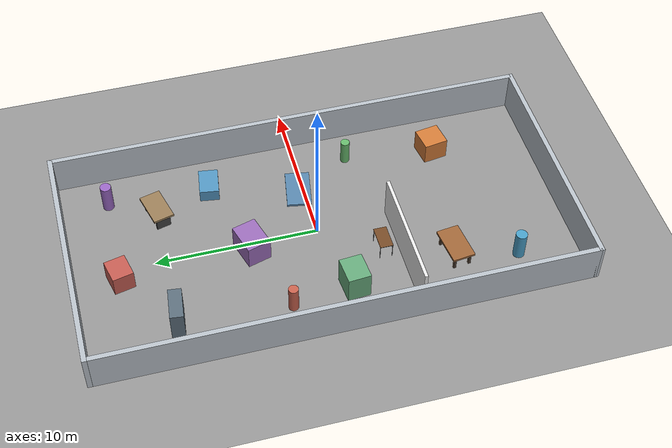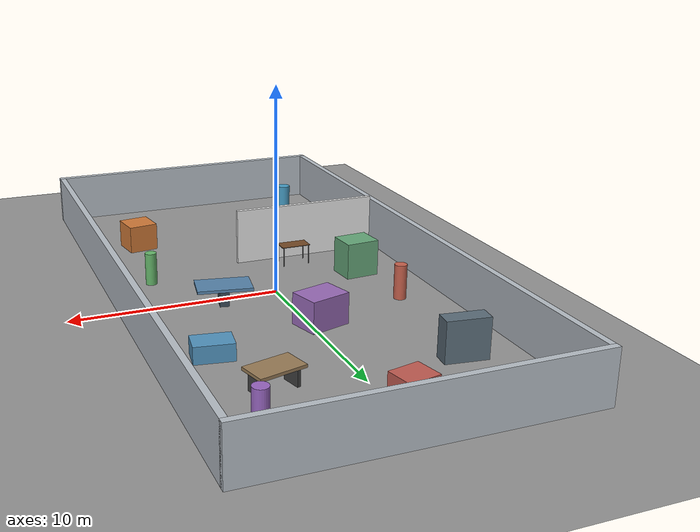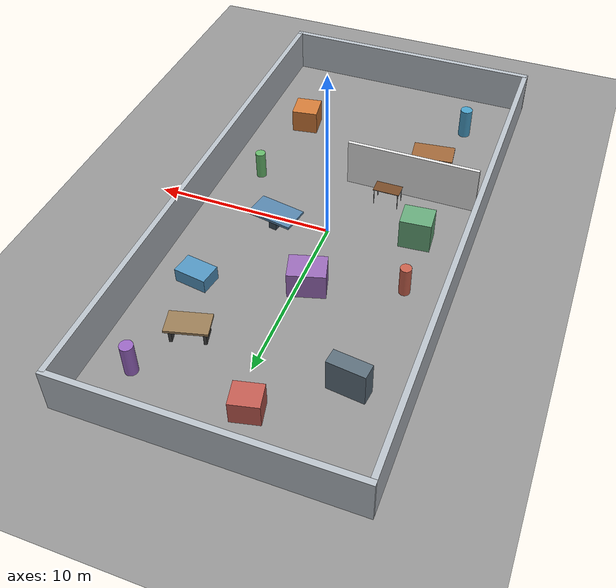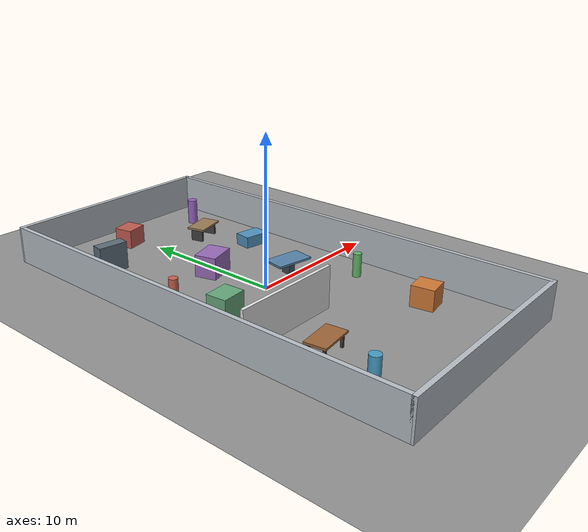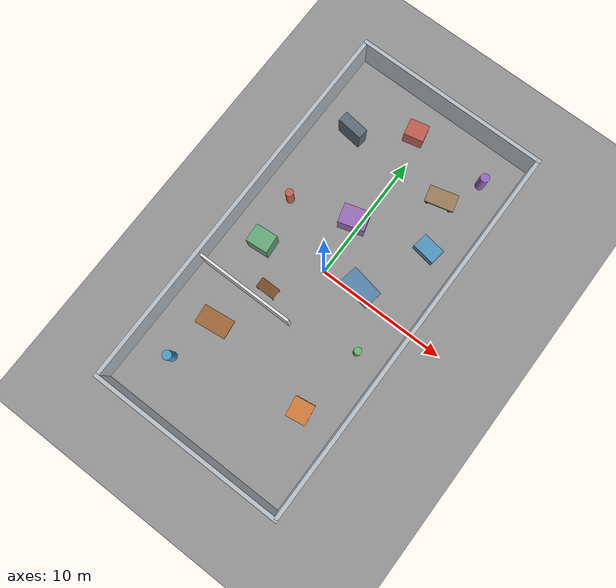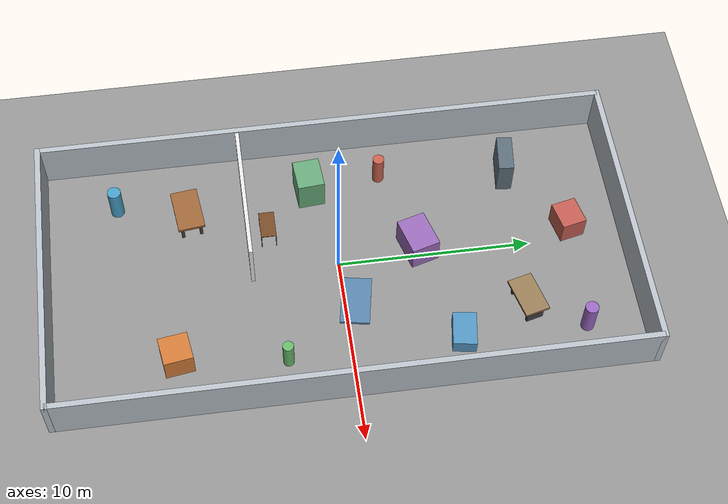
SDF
<?xml version='1.0' encoding='utf-8'?>
<sdf version="1.9">
  <world name="student_center">
      <plugin
      filename="gz-sim-physics-system"
      name="gz::sim::systems::Physics"/>

    <plugin
      filename="gz-sim-user-commands-system"
      name="gz::sim::systems::UserCommands"/>

    <plugin
      filename="gz-sim-scene-broadcaster-system"
      name="gz::sim::systems::SceneBroadcaster"/>

    <plugin
      filename="gz-sim-sensors-system"
      name="gz::sim::systems::Sensors">
      <render_engine>ogre2</render_engine>
    </plugin>
    <plugin
      filename="gz-sim-imu-system"
      name="gz::sim::systems::Imu"/>

    <physics type="ode">
      <max_step_size>0.004</max_step_size>
      <real_time_factor>1.0</real_time_factor>
      <real_time_update_rate>250</real_time_update_rate>
    </physics>
    <gravity>0 0 -9.8</gravity>
    <magnetic_field>6e-06 2.3e-05 -4.2e-05</magnetic_field>
    <atmosphere type="adiabatic" />
    <spherical_coordinates>
      <surface_model>EARTH_WGS84</surface_model>
      <world_frame_orientation>ENU</world_frame_orientation>
      <latitude_deg>47.397971057728974</latitude_deg>
      <longitude_deg> 8.546163739800146</longitude_deg>
      <elevation>0</elevation>
    </spherical_coordinates>
    <scene>
      <ambient>0.48 0.48 0.48 1</ambient>
      <background>0.86 0.89 0.92 1</background>
      <shadows>1</shadows>
    </scene>
    <light name="sun" type="directional">
      <cast_shadows>1</cast_shadows>
      <pose>0 0 10 0 -0 0</pose>
      <diffuse>0.8 0.8 0.8 1</diffuse>
      <specular>0.2 0.2 0.2 1</specular>
      <attenuation>
        <range>1000</range>
        <constant>0.9</constant>
        <linear>0.01</linear>
        <quadratic>0.001</quadratic>
      </attenuation>
      <direction>-0.5 0.1 -0.9</direction>
      <spot>
        <inner_angle>0</inner_angle>
        <outer_angle>0</outer_angle>
        <falloff>0</falloff>
      </spot>
    </light>
    <model name="ground_plane">
      <static>1</static>
      <link name="link">
        <collision name="collision">
          <geometry>
            <plane>
              <normal>0 0 1</normal>
              <size>80 80</size>
            </plane>
          </geometry>
          <max_contacts>10</max_contacts>
          <surface>
            <contact>
              <ode />
            </contact>
            <bounce />
            <friction>
              <torsional>
                <ode />
              </torsional>
              <ode />
            </friction>
          </surface>
        </collision>
        <visual name="visual">
          <cast_shadows>0</cast_shadows>
          <geometry>
            <plane>
              <normal>0 0 1</normal>
              <size>80 80</size>
            </plane>
          </geometry>
          <material>
            <ambient>0.48 0.48 0.48 1</ambient>
            <diffuse>0.58 0.58 0.58 1</diffuse>
            <specular>0.08 0.08 0.08 1</specular>
          </material>
        </visual>
        <self_collide>0</self_collide>
        <enable_wind>0</enable_wind>
        <kinematic>0</kinematic>
      </link>
    </model>
    <model name="wall_north">
      <static>1</static>
      <pose>0 15 1.25 0 -0 0</pose>
      <link name="link">
        <collision name="collision">
          <geometry>
            <box>
              <size>15.3 0.3 2.5</size>
            </box>
          </geometry>
          <max_contacts>10</max_contacts>
          <surface>
            <contact>
              <ode />
            </contact>
            <bounce />
            <friction>
              <torsional>
                <ode />
              </torsional>
              <ode />
            </friction>
          </surface>
        </collision>
        <visual name="visual">
          <geometry>
            <box>
              <size>15.3 0.3 2.5</size>
            </box>
          </geometry>
          <material>
            <ambient>0.72 0.75 0.78 1</ambient>
            <diffuse>0.72 0.75 0.78 1</diffuse>
          </material>
        </visual>
        <self_collide>0</self_collide>
        <enable_wind>0</enable_wind>
        <kinematic>0</kinematic>
      </link>
    </model>
    <model name="wall_south">
      <static>1</static>
      <pose>0 -15 1.25 0 -0 0</pose>
      <link name="link">
        <collision name="collision">
          <geometry>
            <box>
              <size>15.3 0.3 2.5</size>
            </box>
          </geometry>
          <max_contacts>10</max_contacts>
          <surface>
            <contact>
              <ode />
            </contact>
            <bounce />
            <friction>
              <torsional>
                <ode />
              </torsional>
              <ode />
            </friction>
          </surface>
        </collision>
        <visual name="visual">
          <geometry>
            <box>
              <size>15.3 0.3 2.5</size>
            </box>
          </geometry>
          <material>
            <ambient>0.72 0.75 0.78 1</ambient>
            <diffuse>0.72 0.75 0.78 1</diffuse>
          </material>
        </visual>
        <self_collide>0</self_collide>
        <enable_wind>0</enable_wind>
        <kinematic>0</kinematic>
      </link>
    </model>
    <model name="wall_east">
      <static>1</static>
      <pose>7.5 0 1.25 0 -0 0</pose>
      <link name="link">
        <collision name="collision">
          <geometry>
            <box>
              <size>0.3 30 2.5</size>
            </box>
          </geometry>
          <max_contacts>10</max_contacts>
          <surface>
            <contact>
              <ode />
            </contact>
            <bounce />
            <friction>
              <torsional>
                <ode />
              </torsional>
              <ode />
            </friction>
          </surface>
        </collision>
        <visual name="visual">
          <geometry>
            <box>
              <size>0.3 30 2.5</size>
            </box>
          </geometry>
          <material>
            <ambient>0.72 0.75 0.78 1</ambient>
            <diffuse>0.72 0.75 0.78 1</diffuse>
          </material>
        </visual>
        <self_collide>0</self_collide>
        <enable_wind>0</enable_wind>
        <kinematic>0</kinematic>
      </link>
    </model>
    <model name="wall_west">
      <static>1</static>
      <pose>-7.5 0 1.25 0 -0 0</pose>
      <link name="link">
        <collision name="collision">
          <geometry>
            <box>
              <size>0.3 30 2.5</size>
            </box>
          </geometry>
          <max_contacts>10</max_contacts>
          <surface>
            <contact>
              <ode />
            </contact>
            <bounce />
            <friction>
              <torsional>
                <ode />
              </torsional>
              <ode />
            </friction>
          </surface>
        </collision>
        <visual name="visual">
          <geometry>
            <box>
              <size>0.3 30 2.5</size>
            </box>
          </geometry>
          <material>
            <ambient>0.72 0.75 0.78 1</ambient>
            <diffuse>0.72 0.75 0.78 1</diffuse>
          </material>
        </visual>
        <self_collide>0</self_collide>
        <enable_wind>0</enable_wind>
        <kinematic>0</kinematic>
      </link>
    </model>
    <model name="table_southwest">
      <static>1</static>
      <pose>-3.8 -7.5 0 0 -0 0.12</pose>
      <link name="link">
        <collision name="top_collision">
          <pose>0 0 0.92 0 -0 0</pose>
          <geometry>
            <box>
              <size>2.4 1.4 0.14</size>
            </box>
          </geometry>
          <max_contacts>10</max_contacts>
          <surface>
            <contact>
              <ode />
            </contact>
            <bounce />
            <friction>
              <torsional>
                <ode />
              </torsional>
              <ode />
            </friction>
          </surface>
        </collision>
        <visual name="top_visual">
          <pose>0 0 0.92 0 -0 0</pose>
          <geometry>
            <box>
              <size>2.4 1.4 0.14</size>
            </box>
          </geometry>
          <material>
            <ambient>0.55 0.34 0.18 1</ambient>
            <diffuse>0.62 0.4 0.22 1</diffuse>
          </material>
        </visual>
        <collision name="leg_1_collision">
          <pose>-0.95 -0.48 0.44 0 -0 0</pose>
          <geometry>
            <box>
              <size>0.16 0.16 0.88</size>
            </box>
          </geometry>
          <max_contacts>10</max_contacts>
          <surface>
            <contact>
              <ode />
            </contact>
            <bounce />
            <friction>
              <torsional>
                <ode />
              </torsional>
              <ode />
            </friction>
          </surface>
        </collision>
        <collision name="leg_2_collision">
          <pose>0.95 -0.48 0.44 0 -0 0</pose>
          <geometry>
            <box>
              <size>0.16 0.16 0.88</size>
            </box>
          </geometry>
          <max_contacts>10</max_contacts>
          <surface>
            <contact>
              <ode />
            </contact>
            <bounce />
            <friction>
              <torsional>
                <ode />
              </torsional>
              <ode />
            </friction>
          </surface>
        </collision>
        <collision name="leg_3_collision">
          <pose>-0.95 0.48 0.44 0 -0 0</pose>
          <geometry>
            <box>
              <size>0.16 0.16 0.88</size>
            </box>
          </geometry>
          <max_contacts>10</max_contacts>
          <surface>
            <contact>
              <ode />
            </contact>
            <bounce />
            <friction>
              <torsional>
                <ode />
              </torsional>
              <ode />
            </friction>
          </surface>
        </collision>
        <collision name="leg_4_collision">
          <pose>0.95 0.48 0.44 0 -0 0</pose>
          <geometry>
            <box>
              <size>0.16 0.16 0.88</size>
            </box>
          </geometry>
          <max_contacts>10</max_contacts>
          <surface>
            <contact>
              <ode />
            </contact>
            <bounce />
            <friction>
              <torsional>
                <ode />
              </torsional>
              <ode />
            </friction>
          </surface>
        </collision>
        <visual name="leg_1_visual">
          <pose>-0.95 -0.48 0.44 0 -0 0</pose>
          <geometry>
            <box>
              <size>0.16 0.16 0.88</size>
            </box>
          </geometry>
          <material>
            <ambient>0.28 0.22 0.17 1</ambient>
            <diffuse>0.28 0.22 0.17 1</diffuse>
          </material>
        </visual>
        <visual name="leg_2_visual">
          <pose>0.95 -0.48 0.44 0 -0 0</pose>
          <geometry>
            <box>
              <size>0.16 0.16 0.88</size>
            </box>
          </geometry>
          <material>
            <ambient>0.28 0.22 0.17 1</ambient>
            <diffuse>0.28 0.22 0.17 1</diffuse>
          </material>
        </visual>
        <visual name="leg_3_visual">
          <pose>-0.95 0.48 0.44 0 -0 0</pose>
          <geometry>
            <box>
              <size>0.16 0.16 0.88</size>
            </box>
          </geometry>
          <material>
            <ambient>0.28 0.22 0.17 1</ambient>
            <diffuse>0.28 0.22 0.17 1</diffuse>
          </material>
        </visual>
        <visual name="leg_4_visual">
          <pose>0.95 0.48 0.44 0 -0 0</pose>
          <geometry>
            <box>
              <size>0.16 0.16 0.88</size>
            </box>
          </geometry>
          <material>
            <ambient>0.28 0.22 0.17 1</ambient>
            <diffuse>0.28 0.22 0.17 1</diffuse>
          </material>
        </visual>
        <self_collide>0</self_collide>
        <enable_wind>0</enable_wind>
        <kinematic>0</kinematic>
      </link>
    </model>
    <model name="table_center">
      <static>1</static>
      <pose>2.8 0.5 0 0 0 -0.18</pose>
      <link name="link">
        <collision name="top_collision">
          <pose>0 0 0.92 0 -0 0</pose>
          <geometry>
            <box>
              <size>2.6 1.5 0.14</size>
            </box>
          </geometry>
          <max_contacts>10</max_contacts>
          <surface>
            <contact>
              <ode />
            </contact>
            <bounce />
            <friction>
              <torsional>
                <ode />
              </torsional>
              <ode />
            </friction>
          </surface>
        </collision>
        <visual name="top_visual">
          <pose>0 0 0.92 0 -0 0</pose>
          <geometry>
            <box>
              <size>2.6 1.5 0.14</size>
            </box>
          </geometry>
          <material>
            <ambient>0.34 0.52 0.67 1</ambient>
            <diffuse>0.34 0.52 0.67 1</diffuse>
          </material>
        </visual>
        <collision name="base_collision">
          <pose>0 0 0.43 0 -0 0</pose>
          <geometry>
            <box>
              <size>0.45 0.75 0.86</size>
            </box>
          </geometry>
          <max_contacts>10</max_contacts>
          <surface>
            <contact>
              <ode />
            </contact>
            <bounce />
            <friction>
              <torsional>
                <ode />
              </torsional>
              <ode />
            </friction>
          </surface>
        </collision>
        <visual name="base_visual">
          <pose>0 0 0.43 0 -0 0</pose>
          <geometry>
            <box>
              <size>0.45 0.75 0.86</size>
            </box>
          </geometry>
          <material>
            <ambient>0.22 0.29 0.34 1</ambient>
            <diffuse>0.22 0.29 0.34 1</diffuse>
          </material>
        </visual>
        <self_collide>0</self_collide>
        <enable_wind>0</enable_wind>
        <kinematic>0</kinematic>
      </link>
    </model>
    <model name="table_northeast">
      <static>1</static>
      <pose>3.6 9.2 0 0 -0 0.25</pose>
      <link name="link">
        <collision name="top_collision">
          <pose>0 0 0.92 0 -0 0</pose>
          <geometry>
            <box>
              <size>2.2 1.3 0.14</size>
            </box>
          </geometry>
          <max_contacts>10</max_contacts>
          <surface>
            <contact>
              <ode />
            </contact>
            <bounce />
            <friction>
              <torsional>
                <ode />
              </torsional>
              <ode />
            </friction>
          </surface>
        </collision>
        <visual name="top_visual">
          <pose>0 0 0.92 0 -0 0</pose>
          <geometry>
            <box>
              <size>2.2 1.3 0.14</size>
            </box>
          </geometry>
          <material>
            <ambient>0.52 0.42 0.3 1</ambient>
            <diffuse>0.6 0.49 0.34 1</diffuse>
          </material>
        </visual>
        <collision name="left_support">
          <pose>-0.85 0 0.44 0 -0 0</pose>
          <geometry>
            <box>
              <size>0.16 0.9 0.88</size>
            </box>
          </geometry>
          <max_contacts>10</max_contacts>
          <surface>
            <contact>
              <ode />
            </contact>
            <bounce />
            <friction>
              <torsional>
                <ode />
              </torsional>
              <ode />
            </friction>
          </surface>
        </collision>
        <collision name="right_support">
          <pose>0.85 0 0.44 0 -0 0</pose>
          <geometry>
            <box>
              <size>0.16 0.9 0.88</size>
            </box>
          </geometry>
          <max_contacts>10</max_contacts>
          <surface>
            <contact>
              <ode />
            </contact>
            <bounce />
            <friction>
              <torsional>
                <ode />
              </torsional>
              <ode />
            </friction>
          </surface>
        </collision>
        <visual name="left_support_visual">
          <pose>-0.85 0 0.44 0 -0 0</pose>
          <geometry>
            <box>
              <size>0.16 0.9 0.88</size>
            </box>
          </geometry>
          <material>
            <ambient>0.25 0.25 0.25 1</ambient>
            <diffuse>0.25 0.25 0.25 1</diffuse>
          </material>
        </visual>
        <visual name="right_support_visual">
          <pose>0.85 0 0.44 0 -0 0</pose>
          <geometry>
            <box>
              <size>0.16 0.9 0.88</size>
            </box>
          </geometry>
          <material>
            <ambient>0.25 0.25 0.25 1</ambient>
            <diffuse>0.25 0.25 0.25 1</diffuse>
          </material>
        </visual>
        <self_collide>0</self_collide>
        <enable_wind>0</enable_wind>
        <kinematic>0</kinematic>
      </link>
    </model>
    <model name="box_south_a">
      <static>1</static>
      <pose>4.6 -8.7 0.7 0 -0 0.15</pose>
      <link name="link">
        <collision name="collision">
          <geometry>
            <box>
              <size>1.5 1.5 1.4</size>
            </box>
          </geometry>
          <max_contacts>10</max_contacts>
          <surface>
            <contact>
              <ode />
            </contact>
            <bounce />
            <friction>
              <torsional>
                <ode />
              </torsional>
              <ode />
            </friction>
          </surface>
        </collision>
        <visual name="visual">
          <geometry>
            <box>
              <size>1.5 1.5 1.4</size>
            </box>
          </geometry>
          <material>
            <ambient>0.82 0.48 0.22 1</ambient>
            <diffuse>0.82 0.48 0.22 1</diffuse>
          </material>
        </visual>
        <self_collide>0</self_collide>
        <enable_wind>0</enable_wind>
        <kinematic>0</kinematic>
      </link>
    </model>
    <model name="tall_box_west">
      <static>1</static>
      <pose>-4.7 -1 0.9 0 -0 0.08</pose>
      <link name="link">
        <collision name="collision">
          <geometry>
            <box>
              <size>1.7 1.4 1.8</size>
            </box>
          </geometry>
          <max_contacts>10</max_contacts>
          <surface>
            <contact>
              <ode />
            </contact>
            <bounce />
            <friction>
              <torsional>
                <ode />
              </torsional>
              <ode />
            </friction>
          </surface>
        </collision>
        <visual name="visual">
          <geometry>
            <box>
              <size>1.7 1.4 1.8</size>
            </box>
          </geometry>
          <material>
            <ambient>0.4 0.66 0.48 1</ambient>
            <diffuse>0.4 0.66 0.48 1</diffuse>
          </material>
        </visual>
        <self_collide>0</self_collide>
        <enable_wind>0</enable_wind>
        <kinematic>0</kinematic>
      </link>
    </model>
    <model name="box_center_north">
      <static>1</static>
      <pose>-0.5 4.2 0.75 0 -0 0.28</pose>
      <link name="link">
        <collision name="collision">
          <geometry>
            <box>
              <size>2 1.5 1.5</size>
            </box>
          </geometry>
          <max_contacts>10</max_contacts>
          <surface>
            <contact>
              <ode />
            </contact>
            <bounce />
            <friction>
              <torsional>
                <ode />
              </torsional>
              <ode />
            </friction>
          </surface>
        </collision>
        <visual name="visual">
          <geometry>
            <box>
              <size>2 1.5 1.5</size>
            </box>
          </geometry>
          <material>
            <ambient>0.6 0.42 0.72 1</ambient>
            <diffuse>0.6 0.42 0.72 1</diffuse>
          </material>
        </visual>
        <self_collide>0</self_collide>
        <enable_wind>0</enable_wind>
        <kinematic>0</kinematic>
      </link>
    </model>
    <model name="low_box_east">
      <static>1</static>
      <pose>5 5.7 0.4 0 0 -0.15</pose>
      <link name="link">
        <collision name="collision">
          <geometry>
            <box>
              <size>1.8 1.2 0.8</size>
            </box>
          </geometry>
          <max_contacts>10</max_contacts>
          <surface>
            <contact>
              <ode />
            </contact>
            <bounce />
            <friction>
              <torsional>
                <ode />
              </torsional>
              <ode />
            </friction>
          </surface>
        </collision>
        <visual name="visual">
          <geometry>
            <box>
              <size>1.8 1.2 0.8</size>
            </box>
          </geometry>
          <material>
            <ambient>0.32 0.58 0.75 1</ambient>
            <diffuse>0.32 0.58 0.75 1</diffuse>
          </material>
        </visual>
        <self_collide>0</self_collide>
        <enable_wind>0</enable_wind>
        <kinematic>0</kinematic>
      </link>
    </model>
    <model name="cabinet_northwest">
      <static>1</static>
      <pose>-4.6 9.5 0.95 0 0 -0.12</pose>
      <link name="link">
        <collision name="collision">
          <geometry>
            <box>
              <size>2 0.8 1.9</size>
            </box>
          </geometry>
          <max_contacts>10</max_contacts>
          <surface>
            <contact>
              <ode />
            </contact>
            <bounce />
            <friction>
              <torsional>
                <ode />
              </torsional>
              <ode />
            </friction>
          </surface>
        </collision>
        <visual name="visual">
          <geometry>
            <box>
              <size>2 0.8 1.9</size>
            </box>
          </geometry>
          <material>
            <ambient>0.36 0.43 0.48 1</ambient>
            <diffuse>0.36 0.43 0.48 1</diffuse>
          </material>
        </visual>
        <self_collide>0</self_collide>
        <enable_wind>0</enable_wind>
        <kinematic>0</kinematic>
      </link>
    </model>
    <model name="box_north">
      <static>1</static>
      <pose>-0.8 12.2 0.65 0 -0 0.22</pose>
      <link name="link">
        <collision name="collision">
          <geometry>
            <box>
              <size>1.5 1.3 1.3</size>
            </box>
          </geometry>
          <max_contacts>10</max_contacts>
          <surface>
            <contact>
              <ode />
            </contact>
            <bounce />
            <friction>
              <torsional>
                <ode />
              </torsional>
              <ode />
            </friction>
          </surface>
        </collision>
        <visual name="visual">
          <geometry>
            <box>
              <size>1.5 1.3 1.3</size>
            </box>
          </geometry>
          <material>
            <ambient>0.76 0.36 0.32 1</ambient>
            <diffuse>0.76 0.36 0.32 1</diffuse>
          </material>
        </visual>
        <self_collide>0</self_collide>
        <enable_wind>0</enable_wind>
        <kinematic>0</kinematic>
      </link>
    </model>
    <model name="pillar_south">
      <static>1</static>
      <pose>-4.8 -11.2 0.9 0 -0 0</pose>
      <link name="link">
        <collision name="collision">
          <geometry>
            <cylinder>
              <radius>0.35</radius>
              <length>1.8</length>
            </cylinder>
          </geometry>
          <max_contacts>10</max_contacts>
          <surface>
            <contact>
              <ode />
            </contact>
            <bounce />
            <friction>
              <torsional>
                <ode />
              </torsional>
              <ode />
            </friction>
          </surface>
        </collision>
        <visual name="visual">
          <geometry>
            <cylinder>
              <radius>0.35</radius>
              <length>1.8</length>
            </cylinder>
          </geometry>
          <material>
            <ambient>0.28 0.62 0.78 1</ambient>
            <diffuse>0.28 0.62 0.78 1</diffuse>
          </material>
        </visual>
        <self_collide>0</self_collide>
        <enable_wind>0</enable_wind>
        <kinematic>0</kinematic>
      </link>
    </model>
    <model name="pillar_midwest">
      <static>1</static>
      <pose>-5.2 2.8 0.85 0 -0 0</pose>
      <link name="link">
        <collision name="collision">
          <geometry>
            <cylinder>
              <radius>0.3</radius>
              <length>1.7</length>
            </cylinder>
          </geometry>
          <max_contacts>10</max_contacts>
          <surface>
            <contact>
              <ode />
            </contact>
            <bounce />
            <friction>
              <torsional>
                <ode />
              </torsional>
              <ode />
            </friction>
          </surface>
        </collision>
        <visual name="visual">
          <geometry>
            <cylinder>
              <radius>0.3</radius>
              <length>1.7</length>
            </cylinder>
          </geometry>
          <material>
            <ambient>0.78 0.38 0.3 1</ambient>
            <diffuse>0.78 0.38 0.3 1</diffuse>
          </material>
        </visual>
        <self_collide>0</self_collide>
        <enable_wind>0</enable_wind>
        <kinematic>0</kinematic>
      </link>
    </model>
    <model name="pillar_mideast">
      <static>1</static>
      <pose>5.3 -3.2 0.8 0 -0 0</pose>
      <link name="link">
        <collision name="collision">
          <geometry>
            <cylinder>
              <radius>0.28</radius>
              <length>1.6</length>
            </cylinder>
          </geometry>
          <max_contacts>10</max_contacts>
          <surface>
            <contact>
              <ode />
            </contact>
            <bounce />
            <friction>
              <torsional>
                <ode />
              </torsional>
              <ode />
            </friction>
          </surface>
        </collision>
        <visual name="visual">
          <geometry>
            <cylinder>
              <radius>0.28</radius>
              <length>1.6</length>
            </cylinder>
          </geometry>
          <material>
            <ambient>0.4 0.72 0.42 1</ambient>
            <diffuse>0.4 0.72 0.42 1</diffuse>
          </material>
        </visual>
        <self_collide>0</self_collide>
        <enable_wind>0</enable_wind>
        <kinematic>0</kinematic>
      </link>
    </model>
    <model name="pillar_north">
      <static>1</static>
      <pose>5.2 12 0.9 0 -0 0</pose>
      <link name="link">
        <collision name="collision">
          <geometry>
            <cylinder>
              <radius>0.34</radius>
              <length>1.8</length>
            </cylinder>
          </geometry>
          <max_contacts>10</max_contacts>
          <surface>
            <contact>
              <ode />
            </contact>
            <bounce />
            <friction>
              <torsional>
                <ode />
              </torsional>
              <ode />
            </friction>
          </surface>
        </collision>
        <visual name="visual">
          <geometry>
            <cylinder>
              <radius>0.34</radius>
              <length>1.8</length>
            </cylinder>
          </geometry>
          <material>
            <ambient>0.6 0.4 0.76 1</ambient>
            <diffuse>0.6 0.4 0.76 1</diffuse>
          </material>
        </visual>
        <self_collide>0</self_collide>
        <enable_wind>0</enable_wind>
        <kinematic>0</kinematic>
      </link>
    </model>
    <model name="grey_wall">
      <static>1</static>
      <link name="link">
        <pose>0 0 1.4 0 -0 0</pose>
        <collision name="collision">
          <geometry>
            <box>
              <size>7.5 0.2 2.8</size>
            </box>
          </geometry>
          <max_contacts>10</max_contacts>
          <surface>
            <contact>
              <ode />
            </contact>
            <bounce />
            <friction>
              <torsional>
                <ode />
              </torsional>
              <ode />
            </friction>
          </surface>
        </collision>
        <visual name="visual">
          <cast_shadows>0</cast_shadows>
          <geometry>
            <box>
              <size>7.5 0.2 2.8</size>
            </box>
          </geometry>
          <material>
            <ambient>0.9 0.9 0.9 1</ambient>
            <diffuse>0.9 0.9 0.9 1</diffuse>
            <specular>0.08 0.08 0.08 1</specular>
            <pbr>
              <metal>
                <albedo_map>model://grey_wall/materials/textures/grey_wall.png</albedo_map>
                <metalness>0.0</metalness>
                <roughness>0.85</roughness>
              </metal>
            </pbr>
          </material>
        </visual>
        <self_collide>0</self_collide>
        <enable_wind>0</enable_wind>
        <kinematic>0</kinematic>
      </link>
      <pose>-3.33695 -4.49296 0 0 -0 0</pose>
    </model>
    <model name="table">
      <static>1</static>
      <link name="link">
        <collision name="surface">
          <pose>0 0 1 0 -0 0</pose>
          <geometry>
            <box>
              <size>1.5 0.8 0.03</size>
            </box>
          </geometry>
          <surface>
            <friction>
              <ode>
                <mu>0.6</mu>
                <mu2>0.6</mu2>
              </ode>
              <torsional>
                <ode />
              </torsional>
            </friction>
            <contact>
              <ode />
            </contact>
            <bounce />
          </surface>
          <max_contacts>10</max_contacts>
        </collision>
        <visual name="visual1">
          <pose>0 0 1 0 -0 0</pose>
          <geometry>
            <box>
              <size>1.5 0.8 0.03</size>
            </box>
          </geometry>
          <material>
            <ambient>0.34 0.21 0.11 1</ambient>
            <diffuse>0.46 0.29 0.15 1</diffuse>
            <specular>0.08 0.08 0.08 1</specular>
          </material>
        </visual>
        <collision name="front_left_leg">
          <pose>0.68 0.38 0.5 0 -0 0</pose>
          <geometry>
            <cylinder>
              <radius>0.02</radius>
              <length>1</length>
            </cylinder>
          </geometry>
          <max_contacts>10</max_contacts>
          <surface>
            <contact>
              <ode />
            </contact>
            <bounce />
            <friction>
              <torsional>
                <ode />
              </torsional>
              <ode />
            </friction>
          </surface>
        </collision>
        <visual name="front_left_leg">
          <pose>0.68 0.38 0.5 0 -0 0</pose>
          <geometry>
            <cylinder>
              <radius>0.02</radius>
              <length>1</length>
            </cylinder>
          </geometry>
          <material>
            <ambient>0.48 0.48 0.48 1</ambient>
            <diffuse>0.58 0.58 0.58 1</diffuse>
            <specular>0.08 0.08 0.08 1</specular>
          </material>
        </visual>
        <collision name="front_right_leg">
          <pose>0.68 -0.38 0.5 0 -0 0</pose>
          <geometry>
            <cylinder>
              <radius>0.02</radius>
              <length>1</length>
            </cylinder>
          </geometry>
          <max_contacts>10</max_contacts>
          <surface>
            <contact>
              <ode />
            </contact>
            <bounce />
            <friction>
              <torsional>
                <ode />
              </torsional>
              <ode />
            </friction>
          </surface>
        </collision>
        <visual name="front_right_leg">
          <pose>0.68 -0.38 0.5 0 -0 0</pose>
          <geometry>
            <cylinder>
              <radius>0.02</radius>
              <length>1</length>
            </cylinder>
          </geometry>
          <material>
            <ambient>0.48 0.48 0.48 1</ambient>
            <diffuse>0.58 0.58 0.58 1</diffuse>
            <specular>0.08 0.08 0.08 1</specular>
          </material>
        </visual>
        <collision name="back_right_leg">
          <pose>-0.68 -0.38 0.5 0 -0 0</pose>
          <geometry>
            <cylinder>
              <radius>0.02</radius>
              <length>1</length>
            </cylinder>
          </geometry>
          <max_contacts>10</max_contacts>
          <surface>
            <contact>
              <ode />
            </contact>
            <bounce />
            <friction>
              <torsional>
                <ode />
              </torsional>
              <ode />
            </friction>
          </surface>
        </collision>
        <visual name="back_right_leg">
          <pose>-0.68 -0.38 0.5 0 -0 0</pose>
          <geometry>
            <cylinder>
              <radius>0.02</radius>
              <length>1</length>
            </cylinder>
          </geometry>
          <material>
            <ambient>0.48 0.48 0.48 1</ambient>
            <diffuse>0.58 0.58 0.58 1</diffuse>
            <specular>0.08 0.08 0.08 1</specular>
          </material>
        </visual>
        <collision name="back_left_leg">
          <pose>-0.68 0.38 0.5 0 -0 0</pose>
          <geometry>
            <cylinder>
              <radius>0.02</radius>
              <length>1</length>
            </cylinder>
          </geometry>
          <max_contacts>10</max_contacts>
          <surface>
            <contact>
              <ode />
            </contact>
            <bounce />
            <friction>
              <torsional>
                <ode />
              </torsional>
              <ode />
            </friction>
          </surface>
        </collision>
        <visual name="back_left_leg">
          <pose>-0.68 0.38 0.5 0 -0 0</pose>
          <geometry>
            <cylinder>
              <radius>0.02</radius>
              <length>1</length>
            </cylinder>
          </geometry>
          <material>
            <ambient>0.48 0.48 0.48 1</ambient>
            <diffuse>0.58 0.58 0.58 1</diffuse>
            <specular>0.08 0.08 0.08 1</specular>
          </material>
        </visual>
        <self_collide>0</self_collide>
        <enable_wind>0</enable_wind>
        <kinematic>0</kinematic>
      </link>
      <pose>-2.30518 -3.44839 0 0 -0 0</pose>
    </model>
    <gui fullscreen="0">
      <camera name="user_camera">
        <pose>29.4392 -9.39682 39.0689 -0 0.895643 3.04819</pose>
        <view_controller>orbit</view_controller>
        <projection_type>perspective</projection_type>
      </camera>
    </gui>
  </world>
</sdf>
